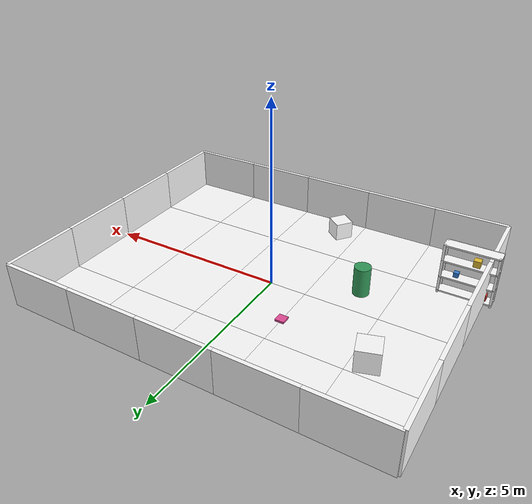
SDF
<sdf version="1.9">
 <world name="room">
  <model name="ground_plane">
   <static>true</static>
   <link name="link">
    <collision name="collision">
     <geometry><plane><normal>0 0 1</normal><size>100 100</size></plane></geometry>
     <surface><friction><ode><mu>1.0</mu><mu2>1.0</mu2></ode></friction></surface>
    </collision>
   </link>
  </model>
  <model name="floor_tiles">
   <static>true</static>
   <link name="link">
    <visual name="tile_0">
     <pose>-4.0 -3.0 -0.005 0 0 0</pose>
     <geometry><box><size>2.0 2.0 0.01</size></box></geometry>
     <material>
      <ambient>1 1 1 1</ambient>
      <diffuse>1 1 1 1</diffuse>
      <specular>0.05 0.05 0.05 1</specular>
      <pbr>
       <metal>
        <albedo_map>model://room_materials/materials/textures/floor.png</albedo_map>
        <metalness>0.0</metalness>
        <roughness>0.9</roughness>
       </metal>
      </pbr>
     </material>
    </visual>
    <visual name="tile_1">
     <pose>-4.0 -1.0 -0.005 0 0 0</pose>
     <geometry><box><size>2.0 2.0 0.01</size></box></geometry>
     <material>
      <ambient>1 1 1 1</ambient>
      <diffuse>1 1 1 1</diffuse>
      <specular>0.05 0.05 0.05 1</specular>
      <pbr>
       <metal>
        <albedo_map>model://room_materials/materials/textures/floor.png</albedo_map>
        <metalness>0.0</metalness>
        <roughness>0.9</roughness>
       </metal>
      </pbr>
     </material>
    </visual>
    <visual name="tile_2">
     <pose>-4.0 1.0 -0.005 0 0 0</pose>
     <geometry><box><size>2.0 2.0 0.01</size></box></geometry>
     <material>
      <ambient>1 1 1 1</ambient>
      <diffuse>1 1 1 1</diffuse>
      <specular>0.05 0.05 0.05 1</specular>
      <pbr>
       <metal>
        <albedo_map>model://room_materials/materials/textures/floor.png</albedo_map>
        <metalness>0.0</metalness>
        <roughness>0.9</roughness>
       </metal>
      </pbr>
     </material>
    </visual>
    <visual name="tile_3">
     <pose>-4.0 3.0 -0.005 0 0 0</pose>
     <geometry><box><size>2.0 2.0 0.01</size></box></geometry>
     <material>
      <ambient>1 1 1 1</ambient>
      <diffuse>1 1 1 1</diffuse>
      <specular>0.05 0.05 0.05 1</specular>
      <pbr>
       <metal>
        <albedo_map>model://room_materials/materials/textures/floor.png</albedo_map>
        <metalness>0.0</metalness>
        <roughness>0.9</roughness>
       </metal>
      </pbr>
     </material>
    </visual>
    <visual name="tile_4">
     <pose>-2.0 -3.0 -0.005 0 0 0</pose>
     <geometry><box><size>2.0 2.0 0.01</size></box></geometry>
     <material>
      <ambient>1 1 1 1</ambient>
      <diffuse>1 1 1 1</diffuse>
      <specular>0.05 0.05 0.05 1</specular>
      <pbr>
       <metal>
        <albedo_map>model://room_materials/materials/textures/floor.png</albedo_map>
        <metalness>0.0</metalness>
        <roughness>0.9</roughness>
       </metal>
      </pbr>
     </material>
    </visual>
    <visual name="tile_5">
     <pose>-2.0 -1.0 -0.005 0 0 0</pose>
     <geometry><box><size>2.0 2.0 0.01</size></box></geometry>
     <material>
      <ambient>1 1 1 1</ambient>
      <diffuse>1 1 1 1</diffuse>
      <specular>0.05 0.05 0.05 1</specular>
      <pbr>
       <metal>
        <albedo_map>model://room_materials/materials/textures/floor.png</albedo_map>
        <metalness>0.0</metalness>
        <roughness>0.9</roughness>
       </metal>
      </pbr>
     </material>
    </visual>
    <visual name="tile_6">
     <pose>-2.0 1.0 -0.005 0 0 0</pose>
     <geometry><box><size>2.0 2.0 0.01</size></box></geometry>
     <material>
      <ambient>1 1 1 1</ambient>
      <diffuse>1 1 1 1</diffuse>
      <specular>0.05 0.05 0.05 1</specular>
      <pbr>
       <metal>
        <albedo_map>model://room_materials/materials/textures/floor.png</albedo_map>
        <metalness>0.0</metalness>
        <roughness>0.9</roughness>
       </metal>
      </pbr>
     </material>
    </visual>
    <visual name="tile_7">
     <pose>-2.0 3.0 -0.005 0 0 0</pose>
     <geometry><box><size>2.0 2.0 0.01</size></box></geometry>
     <material>
      <ambient>1 1 1 1</ambient>
      <diffuse>1 1 1 1</diffuse>
      <specular>0.05 0.05 0.05 1</specular>
      <pbr>
       <metal>
        <albedo_map>model://room_materials/materials/textures/floor.png</albedo_map>
        <metalness>0.0</metalness>
        <roughness>0.9</roughness>
       </metal>
      </pbr>
     </material>
    </visual>
    <visual name="tile_8">
     <pose>0.0 -3.0 -0.005 0 0 0</pose>
     <geometry><box><size>2.0 2.0 0.01</size></box></geometry>
     <material>
      <ambient>1 1 1 1</ambient>
      <diffuse>1 1 1 1</diffuse>
      <specular>0.05 0.05 0.05 1</specular>
      <pbr>
       <metal>
        <albedo_map>model://room_materials/materials/textures/floor.png</albedo_map>
        <metalness>0.0</metalness>
        <roughness>0.9</roughness>
       </metal>
      </pbr>
     </material>
    </visual>
    <visual name="tile_9">
     <pose>0.0 -1.0 -0.005 0 0 0</pose>
     <geometry><box><size>2.0 2.0 0.01</size></box></geometry>
     <material>
      <ambient>1 1 1 1</ambient>
      <diffuse>1 1 1 1</diffuse>
      <specular>0.05 0.05 0.05 1</specular>
      <pbr>
       <metal>
        <albedo_map>model://room_materials/materials/textures/floor.png</albedo_map>
        <metalness>0.0</metalness>
        <roughness>0.9</roughness>
       </metal>
      </pbr>
     </material>
    </visual>
    <visual name="tile_10">
     <pose>0.0 1.0 -0.005 0 0 0</pose>
     <geometry><box><size>2.0 2.0 0.01</size></box></geometry>
     <material>
      <ambient>1 1 1 1</ambient>
      <diffuse>1 1 1 1</diffuse>
      <specular>0.05 0.05 0.05 1</specular>
      <pbr>
       <metal>
        <albedo_map>model://room_materials/materials/textures/floor.png</albedo_map>
        <metalness>0.0</metalness>
        <roughness>0.9</roughness>
       </metal>
      </pbr>
     </material>
    </visual>
    <visual name="tile_11">
     <pose>0.0 3.0 -0.005 0 0 0</pose>
     <geometry><box><size>2.0 2.0 0.01</size></box></geometry>
     <material>
      <ambient>1 1 1 1</ambient>
      <diffuse>1 1 1 1</diffuse>
      <specular>0.05 0.05 0.05 1</specular>
      <pbr>
       <metal>
        <albedo_map>model://room_materials/materials/textures/floor.png</albedo_map>
        <metalness>0.0</metalness>
        <roughness>0.9</roughness>
       </metal>
      </pbr>
     </material>
    </visual>
    <visual name="tile_12">
     <pose>2.0 -3.0 -0.005 0 0 0</pose>
     <geometry><box><size>2.0 2.0 0.01</size></box></geometry>
     <material>
      <ambient>1 1 1 1</ambient>
      <diffuse>1 1 1 1</diffuse>
      <specular>0.05 0.05 0.05 1</specular>
      <pbr>
       <metal>
        <albedo_map>model://room_materials/materials/textures/floor.png</albedo_map>
        <metalness>0.0</metalness>
        <roughness>0.9</roughness>
       </metal>
      </pbr>
     </material>
    </visual>
    <visual name="tile_13">
     <pose>2.0 -1.0 -0.005 0 0 0</pose>
     <geometry><box><size>2.0 2.0 0.01</size></box></geometry>
     <material>
      <ambient>1 1 1 1</ambient>
      <diffuse>1 1 1 1</diffuse>
      <specular>0.05 0.05 0.05 1</specular>
      <pbr>
       <metal>
        <albedo_map>model://room_materials/materials/textures/floor.png</albedo_map>
        <metalness>0.0</metalness>
        <roughness>0.9</roughness>
       </metal>
      </pbr>
     </material>
    </visual>
    <visual name="tile_14">
     <pose>2.0 1.0 -0.005 0 0 0</pose>
     <geometry><box><size>2.0 2.0 0.01</size></box></geometry>
     <material>
      <ambient>1 1 1 1</ambient>
      <diffuse>1 1 1 1</diffuse>
      <specular>0.05 0.05 0.05 1</specular>
      <pbr>
       <metal>
        <albedo_map>model://room_materials/materials/textures/floor.png</albedo_map>
        <metalness>0.0</metalness>
        <roughness>0.9</roughness>
       </metal>
      </pbr>
     </material>
    </visual>
    <visual name="tile_15">
     <pose>2.0 3.0 -0.005 0 0 0</pose>
     <geometry><box><size>2.0 2.0 0.01</size></box></geometry>
     <material>
      <ambient>1 1 1 1</ambient>
      <diffuse>1 1 1 1</diffuse>
      <specular>0.05 0.05 0.05 1</specular>
      <pbr>
       <metal>
        <albedo_map>model://room_materials/materials/textures/floor.png</albedo_map>
        <metalness>0.0</metalness>
        <roughness>0.9</roughness>
       </metal>
      </pbr>
     </material>
    </visual>
    <visual name="tile_16">
     <pose>4.0 -3.0 -0.005 0 0 0</pose>
     <geometry><box><size>2.0 2.0 0.01</size></box></geometry>
     <material>
      <ambient>1 1 1 1</ambient>
      <diffuse>1 1 1 1</diffuse>
      <specular>0.05 0.05 0.05 1</specular>
      <pbr>
       <metal>
        <albedo_map>model://room_materials/materials/textures/floor.png</albedo_map>
        <metalness>0.0</metalness>
        <roughness>0.9</roughness>
       </metal>
      </pbr>
     </material>
    </visual>
    <visual name="tile_17">
     <pose>4.0 -1.0 -0.005 0 0 0</pose>
     <geometry><box><size>2.0 2.0 0.01</size></box></geometry>
     <material>
      <ambient>1 1 1 1</ambient>
      <diffuse>1 1 1 1</diffuse>
      <specular>0.05 0.05 0.05 1</specular>
      <pbr>
       <metal>
        <albedo_map>model://room_materials/materials/textures/floor.png</albedo_map>
        <metalness>0.0</metalness>
        <roughness>0.9</roughness>
       </metal>
      </pbr>
     </material>
    </visual>
    <visual name="tile_18">
     <pose>4.0 1.0 -0.005 0 0 0</pose>
     <geometry><box><size>2.0 2.0 0.01</size></box></geometry>
     <material>
      <ambient>1 1 1 1</ambient>
      <diffuse>1 1 1 1</diffuse>
      <specular>0.05 0.05 0.05 1</specular>
      <pbr>
       <metal>
        <albedo_map>model://room_materials/materials/textures/floor.png</albedo_map>
        <metalness>0.0</metalness>
        <roughness>0.9</roughness>
       </metal>
      </pbr>
     </material>
    </visual>
    <visual name="tile_19">
     <pose>4.0 3.0 -0.005 0 0 0</pose>
     <geometry><box><size>2.0 2.0 0.01</size></box></geometry>
     <material>
      <ambient>1 1 1 1</ambient>
      <diffuse>1 1 1 1</diffuse>
      <specular>0.05 0.05 0.05 1</specular>
      <pbr>
       <metal>
        <albedo_map>model://room_materials/materials/textures/floor.png</albedo_map>
        <metalness>0.0</metalness>
        <roughness>0.9</roughness>
       </metal>
      </pbr>
     </material>
    </visual>
   </link>
  </model>
  <model name="walls">
   <static>true</static>
   <link name="link">
    <visual name="wall_x_0">
     <pose>5.0 -3.0 0.6 0 0 0</pose>
     <geometry><box><size>0.1 2.0 1.2</size></box></geometry>
     <material>
      <ambient>1 1 1 1</ambient>
      <diffuse>1 1 1 1</diffuse>
      <specular>0.05 0.05 0.05 1</specular>
      <pbr>
       <metal>
        <albedo_map>model://room_materials/materials/textures/wall_00.png</albedo_map>
        <metalness>0.0</metalness>
        <roughness>0.9</roughness>
       </metal>
      </pbr>
     </material>
    </visual>
    <collision name="wall_x_col_0">
     <pose>5.0 -3.0 0.6 0 0 0</pose>
     <geometry><box><size>0.1 2.0 1.2</size></box></geometry>
    </collision>
    <visual name="wall_x_1">
     <pose>5.0 -1.0 0.6 0 0 0</pose>
     <geometry><box><size>0.1 2.0 1.2</size></box></geometry>
     <material>
      <ambient>1 1 1 1</ambient>
      <diffuse>1 1 1 1</diffuse>
      <specular>0.05 0.05 0.05 1</specular>
      <pbr>
       <metal>
        <albedo_map>model://room_materials/materials/textures/wall_01.png</albedo_map>
        <metalness>0.0</metalness>
        <roughness>0.9</roughness>
       </metal>
      </pbr>
     </material>
    </visual>
    <collision name="wall_x_col_1">
     <pose>5.0 -1.0 0.6 0 0 0</pose>
     <geometry><box><size>0.1 2.0 1.2</size></box></geometry>
    </collision>
    <visual name="wall_x_2">
     <pose>5.0 1.0 0.6 0 0 0</pose>
     <geometry><box><size>0.1 2.0 1.2</size></box></geometry>
     <material>
      <ambient>1 1 1 1</ambient>
      <diffuse>1 1 1 1</diffuse>
      <specular>0.05 0.05 0.05 1</specular>
      <pbr>
       <metal>
        <albedo_map>model://room_materials/materials/textures/wall_02.png</albedo_map>
        <metalness>0.0</metalness>
        <roughness>0.9</roughness>
       </metal>
      </pbr>
     </material>
    </visual>
    <collision name="wall_x_col_2">
     <pose>5.0 1.0 0.6 0 0 0</pose>
     <geometry><box><size>0.1 2.0 1.2</size></box></geometry>
    </collision>
    <visual name="wall_x_3">
     <pose>5.0 3.0 0.6 0 0 0</pose>
     <geometry><box><size>0.1 2.0 1.2</size></box></geometry>
     <material>
      <ambient>1 1 1 1</ambient>
      <diffuse>1 1 1 1</diffuse>
      <specular>0.05 0.05 0.05 1</specular>
      <pbr>
       <metal>
        <albedo_map>model://room_materials/materials/textures/wall_03.png</albedo_map>
        <metalness>0.0</metalness>
        <roughness>0.9</roughness>
       </metal>
      </pbr>
     </material>
    </visual>
    <collision name="wall_x_col_3">
     <pose>5.0 3.0 0.6 0 0 0</pose>
     <geometry><box><size>0.1 2.0 1.2</size></box></geometry>
    </collision>
    <visual name="wall_x_4">
     <pose>-5.0 -3.0 0.6 0 0 0</pose>
     <geometry><box><size>0.1 2.0 1.2</size></box></geometry>
     <material>
      <ambient>1 1 1 1</ambient>
      <diffuse>1 1 1 1</diffuse>
      <specular>0.05 0.05 0.05 1</specular>
      <pbr>
       <metal>
        <albedo_map>model://room_materials/materials/textures/wall_04.png</albedo_map>
        <metalness>0.0</metalness>
        <roughness>0.9</roughness>
       </metal>
      </pbr>
     </material>
    </visual>
    <collision name="wall_x_col_4">
     <pose>-5.0 -3.0 0.6 0 0 0</pose>
     <geometry><box><size>0.1 2.0 1.2</size></box></geometry>
    </collision>
    <visual name="wall_x_5">
     <pose>-5.0 -1.0 0.6 0 0 0</pose>
     <geometry><box><size>0.1 2.0 1.2</size></box></geometry>
     <material>
      <ambient>1 1 1 1</ambient>
      <diffuse>1 1 1 1</diffuse>
      <specular>0.05 0.05 0.05 1</specular>
      <pbr>
       <metal>
        <albedo_map>model://room_materials/materials/textures/wall_05.png</albedo_map>
        <metalness>0.0</metalness>
        <roughness>0.9</roughness>
       </metal>
      </pbr>
     </material>
    </visual>
    <collision name="wall_x_col_5">
     <pose>-5.0 -1.0 0.6 0 0 0</pose>
     <geometry><box><size>0.1 2.0 1.2</size></box></geometry>
    </collision>
    <visual name="wall_x_6">
     <pose>-5.0 1.0 0.6 0 0 0</pose>
     <geometry><box><size>0.1 2.0 1.2</size></box></geometry>
     <material>
      <ambient>1 1 1 1</ambient>
      <diffuse>1 1 1 1</diffuse>
      <specular>0.05 0.05 0.05 1</specular>
      <pbr>
       <metal>
        <albedo_map>model://room_materials/materials/textures/wall_06.png</albedo_map>
        <metalness>0.0</metalness>
        <roughness>0.9</roughness>
       </metal>
      </pbr>
     </material>
    </visual>
    <collision name="wall_x_col_6">
     <pose>-5.0 1.0 0.6 0 0 0</pose>
     <geometry><box><size>0.1 2.0 1.2</size></box></geometry>
    </collision>
    <visual name="wall_x_7">
     <pose>-5.0 3.0 0.6 0 0 0</pose>
     <geometry><box><size>0.1 2.0 1.2</size></box></geometry>
     <material>
      <ambient>1 1 1 1</ambient>
      <diffuse>1 1 1 1</diffuse>
      <specular>0.05 0.05 0.05 1</specular>
      <pbr>
       <metal>
        <albedo_map>model://room_materials/materials/textures/wall_07.png</albedo_map>
        <metalness>0.0</metalness>
        <roughness>0.9</roughness>
       </metal>
      </pbr>
     </material>
    </visual>
    <collision name="wall_x_col_7">
     <pose>-5.0 3.0 0.6 0 0 0</pose>
     <geometry><box><size>0.1 2.0 1.2</size></box></geometry>
    </collision>
    <visual name="wall_y_0">
     <pose>-4.0 4.0 0.6 0 0 0</pose>
     <geometry><box><size>2.0 0.1 1.2</size></box></geometry>
     <material>
      <ambient>1 1 1 1</ambient>
      <diffuse>1 1 1 1</diffuse>
      <specular>0.05 0.05 0.05 1</specular>
      <pbr>
       <metal>
        <albedo_map>model://room_materials/materials/textures/wall_08.png</albedo_map>
        <metalness>0.0</metalness>
        <roughness>0.9</roughness>
       </metal>
      </pbr>
     </material>
    </visual>
    <collision name="wall_y_col_0">
     <pose>-4.0 4.0 0.6 0 0 0</pose>
     <geometry><box><size>2.0 0.1 1.2</size></box></geometry>
    </collision>
    <visual name="wall_y_1">
     <pose>-2.0 4.0 0.6 0 0 0</pose>
     <geometry><box><size>2.0 0.1 1.2</size></box></geometry>
     <material>
      <ambient>1 1 1 1</ambient>
      <diffuse>1 1 1 1</diffuse>
      <specular>0.05 0.05 0.05 1</specular>
      <pbr>
       <metal>
        <albedo_map>model://room_materials/materials/textures/wall_09.png</albedo_map>
        <metalness>0.0</metalness>
        <roughness>0.9</roughness>
       </metal>
      </pbr>
     </material>
    </visual>
    <collision name="wall_y_col_1">
     <pose>-2.0 4.0 0.6 0 0 0</pose>
     <geometry><box><size>2.0 0.1 1.2</size></box></geometry>
    </collision>
    <visual name="wall_y_2">
     <pose>0.0 4.0 0.6 0 0 0</pose>
     <geometry><box><size>2.0 0.1 1.2</size></box></geometry>
     <material>
      <ambient>1 1 1 1</ambient>
      <diffuse>1 1 1 1</diffuse>
      <specular>0.05 0.05 0.05 1</specular>
      <pbr>
       <metal>
        <albedo_map>model://room_materials/materials/textures/wall_10.png</albedo_map>
        <metalness>0.0</metalness>
        <roughness>0.9</roughness>
       </metal>
      </pbr>
     </material>
    </visual>
    <collision name="wall_y_col_2">
     <pose>0.0 4.0 0.6 0 0 0</pose>
     <geometry><box><size>2.0 0.1 1.2</size></box></geometry>
    </collision>
    <visual name="wall_y_3">
     <pose>2.0 4.0 0.6 0 0 0</pose>
     <geometry><box><size>2.0 0.1 1.2</size></box></geometry>
     <material>
      <ambient>1 1 1 1</ambient>
      <diffuse>1 1 1 1</diffuse>
      <specular>0.05 0.05 0.05 1</specular>
      <pbr>
       <metal>
        <albedo_map>model://room_materials/materials/textures/wall_11.png</albedo_map>
        <metalness>0.0</metalness>
        <roughness>0.9</roughness>
       </metal>
      </pbr>
     </material>
    </visual>
    <collision name="wall_y_col_3">
     <pose>2.0 4.0 0.6 0 0 0</pose>
     <geometry><box><size>2.0 0.1 1.2</size></box></geometry>
    </collision>
    <visual name="wall_y_4">
     <pose>4.0 4.0 0.6 0 0 0</pose>
     <geometry><box><size>2.0 0.1 1.2</size></box></geometry>
     <material>
      <ambient>1 1 1 1</ambient>
      <diffuse>1 1 1 1</diffuse>
      <specular>0.05 0.05 0.05 1</specular>
      <pbr>
       <metal>
        <albedo_map>model://room_materials/materials/textures/wall_12.png</albedo_map>
        <metalness>0.0</metalness>
        <roughness>0.9</roughness>
       </metal>
      </pbr>
     </material>
    </visual>
    <collision name="wall_y_col_4">
     <pose>4.0 4.0 0.6 0 0 0</pose>
     <geometry><box><size>2.0 0.1 1.2</size></box></geometry>
    </collision>
    <visual name="wall_y_5">
     <pose>-4.0 -4.0 0.6 0 0 0</pose>
     <geometry><box><size>2.0 0.1 1.2</size></box></geometry>
     <material>
      <ambient>1 1 1 1</ambient>
      <diffuse>1 1 1 1</diffuse>
      <specular>0.05 0.05 0.05 1</specular>
      <pbr>
       <metal>
        <albedo_map>model://room_materials/materials/textures/wall_13.png</albedo_map>
        <metalness>0.0</metalness>
        <roughness>0.9</roughness>
       </metal>
      </pbr>
     </material>
    </visual>
    <collision name="wall_y_col_5">
     <pose>-4.0 -4.0 0.6 0 0 0</pose>
     <geometry><box><size>2.0 0.1 1.2</size></box></geometry>
    </collision>
    <visual name="wall_y_6">
     <pose>-2.0 -4.0 0.6 0 0 0</pose>
     <geometry><box><size>2.0 0.1 1.2</size></box></geometry>
     <material>
      <ambient>1 1 1 1</ambient>
      <diffuse>1 1 1 1</diffuse>
      <specular>0.05 0.05 0.05 1</specular>
      <pbr>
       <metal>
        <albedo_map>model://room_materials/materials/textures/wall_14.png</albedo_map>
        <metalness>0.0</metalness>
        <roughness>0.9</roughness>
       </metal>
      </pbr>
     </material>
    </visual>
    <collision name="wall_y_col_6">
     <pose>-2.0 -4.0 0.6 0 0 0</pose>
     <geometry><box><size>2.0 0.1 1.2</size></box></geometry>
    </collision>
    <visual name="wall_y_7">
     <pose>0.0 -4.0 0.6 0 0 0</pose>
     <geometry><box><size>2.0 0.1 1.2</size></box></geometry>
     <material>
      <ambient>1 1 1 1</ambient>
      <diffuse>1 1 1 1</diffuse>
      <specular>0.05 0.05 0.05 1</specular>
      <pbr>
       <metal>
        <albedo_map>model://room_materials/materials/textures/wall_15.png</albedo_map>
        <metalness>0.0</metalness>
        <roughness>0.9</roughness>
       </metal>
      </pbr>
     </material>
    </visual>
    <collision name="wall_y_col_7">
     <pose>0.0 -4.0 0.6 0 0 0</pose>
     <geometry><box><size>2.0 0.1 1.2</size></box></geometry>
    </collision>
    <visual name="wall_y_8">
     <pose>2.0 -4.0 0.6 0 0 0</pose>
     <geometry><box><size>2.0 0.1 1.2</size></box></geometry>
     <material>
      <ambient>1 1 1 1</ambient>
      <diffuse>1 1 1 1</diffuse>
      <specular>0.05 0.05 0.05 1</specular>
      <pbr>
       <metal>
        <albedo_map>model://room_materials/materials/textures/wall_16.png</albedo_map>
        <metalness>0.0</metalness>
        <roughness>0.9</roughness>
       </metal>
      </pbr>
     </material>
    </visual>
    <collision name="wall_y_col_8">
     <pose>2.0 -4.0 0.6 0 0 0</pose>
     <geometry><box><size>2.0 0.1 1.2</size></box></geometry>
    </collision>
    <visual name="wall_y_9">
     <pose>4.0 -4.0 0.6 0 0 0</pose>
     <geometry><box><size>2.0 0.1 1.2</size></box></geometry>
     <material>
      <ambient>1 1 1 1</ambient>
      <diffuse>1 1 1 1</diffuse>
      <specular>0.05 0.05 0.05 1</specular>
      <pbr>
       <metal>
        <albedo_map>model://room_materials/materials/textures/wall_17.png</albedo_map>
        <metalness>0.0</metalness>
        <roughness>0.9</roughness>
       </metal>
      </pbr>
     </material>
    </visual>
    <collision name="wall_y_col_9">
     <pose>4.0 -4.0 0.6 0 0 0</pose>
     <geometry><box><size>2.0 0.1 1.2</size></box></geometry>
    </collision>
   </link>
  </model>
  <model name="crate_1">
   <static>true</static>
   <pose>-3.4 1.6 0.3 0 0 0.3</pose>
   <link name="link">
    <collision name="collision"><geometry><box><size>0.6 0.6 0.6</size></box></geometry></collision>
    <visual name="visual">
     <geometry><box><size>0.6 0.6 0.6</size></box></geometry>
     <material>
      <ambient>1 1 1 1</ambient>
      <diffuse>1 1 1 1</diffuse>
      <specular>0.05 0.05 0.05 1</specular>
      <pbr>
       <metal>
        <albedo_map>model://room_materials/materials/textures/crate.png</albedo_map>
        <metalness>0.0</metalness>
        <roughness>0.9</roughness>
       </metal>
      </pbr>
     </material>
    </visual>
   </link>
  </model>
  <model name="crate_3">
   <static>true</static>
   <pose>-0.5 -3.2 0.25 0 0 0.8999999999999999</pose>
   <link name="link">
    <collision name="collision"><geometry><box><size>0.5 0.5 0.5</size></box></geometry></collision>
    <visual name="visual">
     <geometry><box><size>0.5 0.5 0.5</size></box></geometry>
     <material>
      <ambient>1 1 1 1</ambient>
      <diffuse>1 1 1 1</diffuse>
      <specular>0.05 0.05 0.05 1</specular>
      <pbr>
       <metal>
        <albedo_map>model://room_materials/materials/textures/crate.png</albedo_map>
        <metalness>0.0</metalness>
        <roughness>0.9</roughness>
       </metal>
      </pbr>
     </material>
    </visual>
   </link>
  </model>
  <model name="low_obstacle_1">
   <static>true</static>
   <pose>-1.0 1.2 0.025 0 0 0</pose>
   <link name="link">
    <collision name="collision"><geometry><box><size>0.25 0.25 0.05</size></box></geometry></collision>
    <visual name="visual">
     <geometry><box><size>0.25 0.25 0.05</size></box></geometry>
     <material><ambient>0.9 0.3 0.6 1</ambient><diffuse>0.9 0.3 0.6 1</diffuse></material>
    </visual>
   </link>
  </model>
  <model name="shelf_0">
   <static>true</static>
   <pose>-4.55 -2.0 0 0 0 0.0</pose>
   <link name="link">
    <visual name="shelf_0_leg_0">
     <pose>0.6699999999999999 0.145 0.71 0 0 0</pose>
     <geometry><box><size>0.06 0.06 1.42</size></box></geometry>
     <material>
      <ambient>1 1 1 1</ambient>
      <diffuse>1 1 1 1</diffuse>
      <specular>0.05 0.05 0.05 1</specular>
      <pbr>
       <metal>
        <albedo_map>model://room_materials/materials/textures/crate.png</albedo_map>
        <metalness>0.0</metalness>
        <roughness>0.9</roughness>
       </metal>
      </pbr>
     </material>
    </visual>
    <collision name="shelf_0_legc_0">
     <pose>0.6699999999999999 0.145 0.71 0 0 0</pose>
     <geometry><box><size>0.06 0.06 1.42</size></box></geometry>
    </collision>
    <visual name="shelf_0_leg_1">
     <pose>0.6699999999999999 -0.145 0.71 0 0 0</pose>
     <geometry><box><size>0.06 0.06 1.42</size></box></geometry>
     <material>
      <ambient>1 1 1 1</ambient>
      <diffuse>1 1 1 1</diffuse>
      <specular>0.05 0.05 0.05 1</specular>
      <pbr>
       <metal>
        <albedo_map>model://room_materials/materials/textures/crate.png</albedo_map>
        <metalness>0.0</metalness>
        <roughness>0.9</roughness>
       </metal>
      </pbr>
     </material>
    </visual>
    <collision name="shelf_0_legc_1">
     <pose>0.6699999999999999 -0.145 0.71 0 0 0</pose>
     <geometry><box><size>0.06 0.06 1.42</size></box></geometry>
    </collision>
    <visual name="shelf_0_leg_2">
     <pose>-0.6699999999999999 0.145 0.71 0 0 0</pose>
     <geometry><box><size>0.06 0.06 1.42</size></box></geometry>
     <material>
      <ambient>1 1 1 1</ambient>
      <diffuse>1 1 1 1</diffuse>
      <specular>0.05 0.05 0.05 1</specular>
      <pbr>
       <metal>
        <albedo_map>model://room_materials/materials/textures/crate.png</albedo_map>
        <metalness>0.0</metalness>
        <roughness>0.9</roughness>
       </metal>
      </pbr>
     </material>
    </visual>
    <collision name="shelf_0_legc_2">
     <pose>-0.6699999999999999 0.145 0.71 0 0 0</pose>
     <geometry><box><size>0.06 0.06 1.42</size></box></geometry>
    </collision>
    <visual name="shelf_0_leg_3">
     <pose>-0.6699999999999999 -0.145 0.71 0 0 0</pose>
     <geometry><box><size>0.06 0.06 1.42</size></box></geometry>
     <material>
      <ambient>1 1 1 1</ambient>
      <diffuse>1 1 1 1</diffuse>
      <specular>0.05 0.05 0.05 1</specular>
      <pbr>
       <metal>
        <albedo_map>model://room_materials/materials/textures/crate.png</albedo_map>
        <metalness>0.0</metalness>
        <roughness>0.9</roughness>
       </metal>
      </pbr>
     </material>
    </visual>
    <collision name="shelf_0_legc_3">
     <pose>-0.6699999999999999 -0.145 0.71 0 0 0</pose>
     <geometry><box><size>0.06 0.06 1.42</size></box></geometry>
    </collision>
    <visual name="shelf_0_board_0">
     <pose>0 0 0.06 0 0 0</pose>
     <geometry><box><size>1.4 0.35 0.04</size></box></geometry>
     <material>
      <ambient>1 1 1 1</ambient>
      <diffuse>1 1 1 1</diffuse>
      <specular>0.05 0.05 0.05 1</specular>
      <pbr>
       <metal>
        <albedo_map>model://room_materials/materials/textures/crate.png</albedo_map>
        <metalness>0.0</metalness>
        <roughness>0.9</roughness>
       </metal>
      </pbr>
     </material>
    </visual>
    <collision name="shelf_0_boardc_0">
     <pose>0 0 0.06 0 0 0</pose>
     <geometry><box><size>1.4 0.35 0.04</size></box></geometry>
    </collision>
    <visual name="shelf_0_board_1">
     <pose>0 0 0.49 0 0 0</pose>
     <geometry><box><size>1.4 0.35 0.04</size></box></geometry>
     <material>
      <ambient>1 1 1 1</ambient>
      <diffuse>1 1 1 1</diffuse>
      <specular>0.05 0.05 0.05 1</specular>
      <pbr>
       <metal>
        <albedo_map>model://room_materials/materials/textures/crate.png</albedo_map>
        <metalness>0.0</metalness>
        <roughness>0.9</roughness>
       </metal>
      </pbr>
     </material>
    </visual>
    <collision name="shelf_0_boardc_1">
     <pose>0 0 0.49 0 0 0</pose>
     <geometry><box><size>1.4 0.35 0.04</size></box></geometry>
    </collision>
    <visual name="shelf_0_board_2">
     <pose>0 0 0.95 0 0 0</pose>
     <geometry><box><size>1.4 0.35 0.04</size></box></geometry>
     <material>
      <ambient>1 1 1 1</ambient>
      <diffuse>1 1 1 1</diffuse>
      <specular>0.05 0.05 0.05 1</specular>
      <pbr>
       <metal>
        <albedo_map>model://room_materials/materials/textures/crate.png</albedo_map>
        <metalness>0.0</metalness>
        <roughness>0.9</roughness>
       </metal>
      </pbr>
     </material>
    </visual>
    <collision name="shelf_0_boardc_2">
     <pose>0 0 0.95 0 0 0</pose>
     <geometry><box><size>1.4 0.35 0.04</size></box></geometry>
    </collision>
    <visual name="shelf_0_board_3">
     <pose>0 0 1.4 0 0 0</pose>
     <geometry><box><size>1.4 0.35 0.04</size></box></geometry>
     <material>
      <ambient>1 1 1 1</ambient>
      <diffuse>1 1 1 1</diffuse>
      <specular>0.05 0.05 0.05 1</specular>
      <pbr>
       <metal>
        <albedo_map>model://room_materials/materials/textures/crate.png</albedo_map>
        <metalness>0.0</metalness>
        <roughness>0.9</roughness>
       </metal>
      </pbr>
     </material>
    </visual>
    <collision name="shelf_0_boardc_3">
     <pose>0 0 1.4 0 0 0</pose>
     <geometry><box><size>1.4 0.35 0.04</size></box></geometry>
    </collision>
    <visual name="shelf_0_back">
     <pose>0 -0.16499999999999998 0.71 0 0 0</pose>
     <geometry><box><size>1.4 0.02 1.42</size></box></geometry>
     <material>
      <ambient>1 1 1 1</ambient>
      <diffuse>1 1 1 1</diffuse>
      <specular>0.05 0.05 0.05 1</specular>
      <pbr>
       <metal>
        <albedo_map>model://room_materials/materials/textures/crate.png</albedo_map>
        <metalness>0.0</metalness>
        <roughness>0.9</roughness>
       </metal>
      </pbr>
     </material>
    </visual>
    <collision name="shelf_0_backc">
     <pose>0 -0.16499999999999998 0.71 0 0 0</pose>
     <geometry><box><size>1.4 0.02 1.42</size></box></geometry>
    </collision>
    <collision name="shelf_0_item_c0">
     <pose>-0.45 0 0.16 0 0 0</pose>
     <geometry><box><size>0.16 0.16 0.16</size></box></geometry>
    </collision>
    <visual name="shelf_0_item_0">
     <pose>-0.45 0 0.16 0 0 0</pose>
     <geometry><box><size>0.16 0.16 0.16</size></box></geometry>
     <material><ambient>0.85 0.25 0.2 1</ambient><diffuse>0.85 0.25 0.2 1</diffuse></material>
    </visual>
    <collision name="shelf_0_item_c1">
     <pose>0.3 0 0.575 0 0 0</pose>
     <geometry><box><size>0.13 0.13 0.13</size></box></geometry>
    </collision>
    <visual name="shelf_0_item_1">
     <pose>0.3 0 0.575 0 0 0</pose>
     <geometry><box><size>0.13 0.13 0.13</size></box></geometry>
     <material><ambient>0.2 0.5 0.85 1</ambient><diffuse>0.2 0.5 0.85 1</diffuse></material>
    </visual>
    <collision name="shelf_0_item_c2">
     <pose>-0.15 0 1.06 0 0 0</pose>
     <geometry><box><size>0.18 0.18 0.18</size></box></geometry>
    </collision>
    <visual name="shelf_0_item_2">
     <pose>-0.15 0 1.06 0 0 0</pose>
     <geometry><box><size>0.18 0.18 0.18</size></box></geometry>
     <material><ambient>0.9 0.75 0.2 1</ambient><diffuse>0.9 0.75 0.2 1</diffuse></material>
    </visual>
   </link>
  </model>
  <model name="pillar_1">
   <static>true</static>
   <pose>-2.2 -0.8 0.4 0 0 0</pose>
   <link name="link">
    <collision name="collision">
     <geometry><cylinder><radius>0.22</radius><length>0.8</length></cylinder></geometry>
    </collision>
    <visual name="visual">
     <geometry><cylinder><radius>0.22</radius><length>0.8</length></cylinder></geometry>
     <material><ambient>0.2 0.6 0.35 1</ambient><diffuse>0.2 0.6 0.35 1</diffuse></material>
    </visual>
   </link>
  </model>
 </world>
</sdf>
